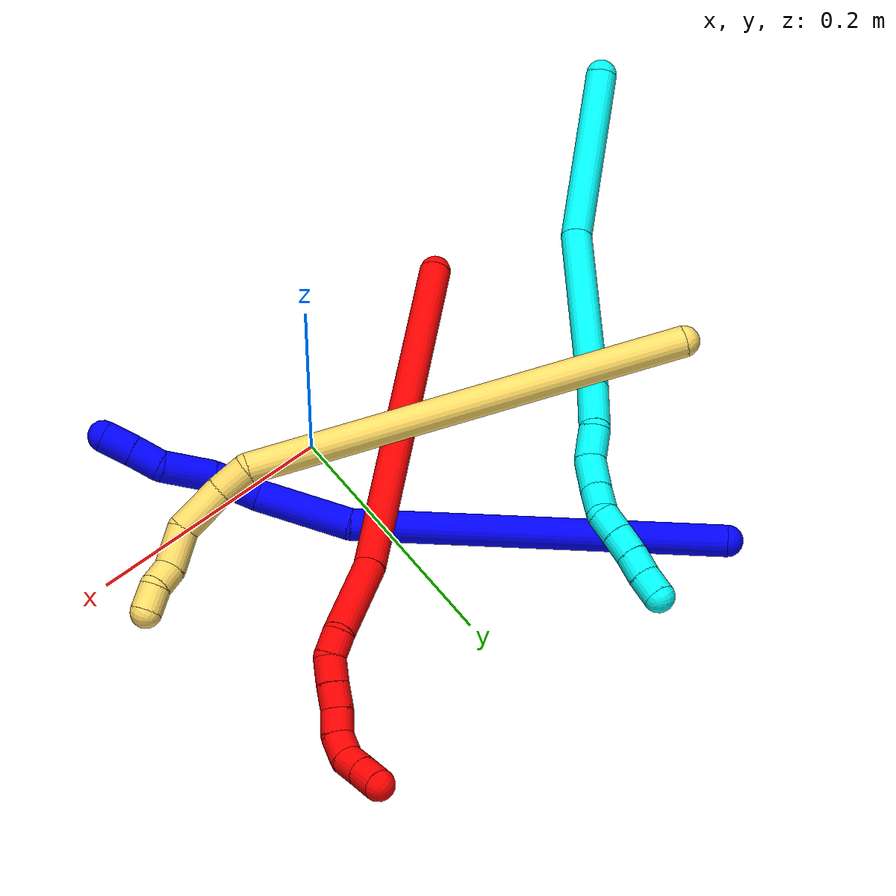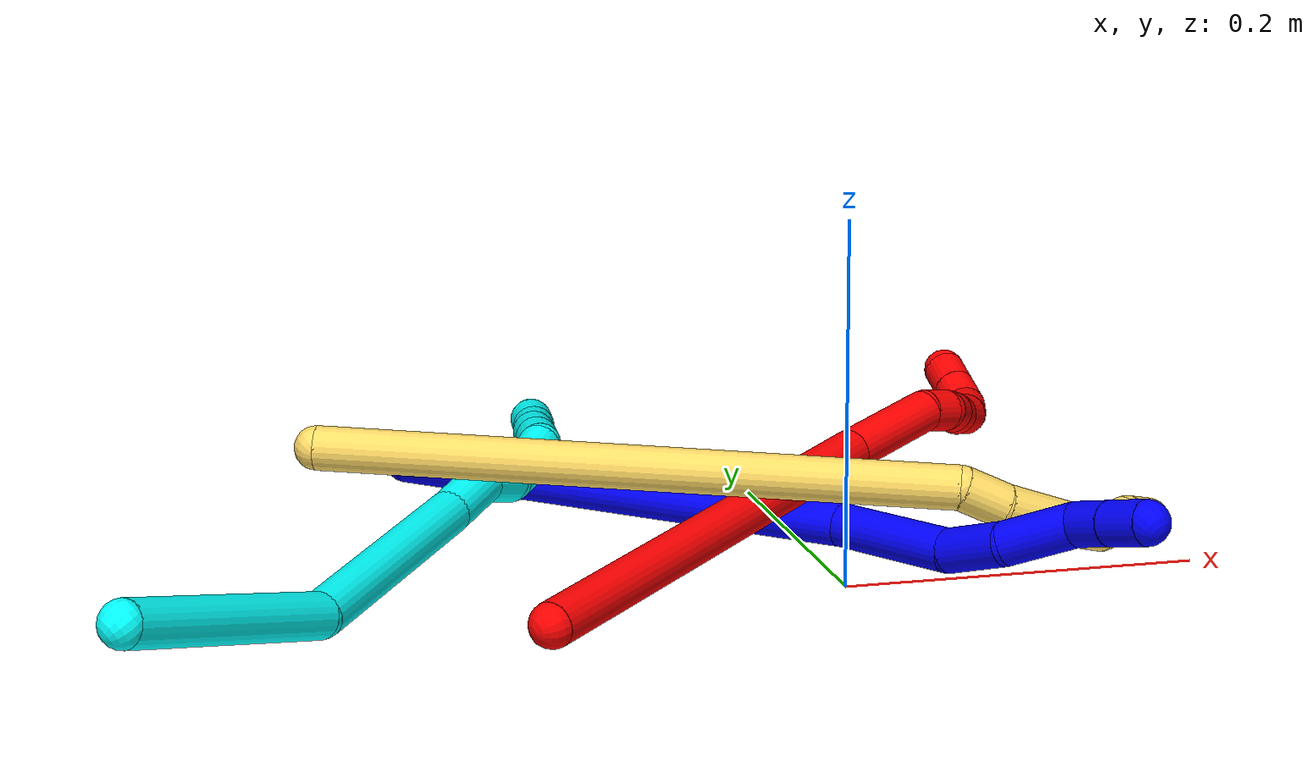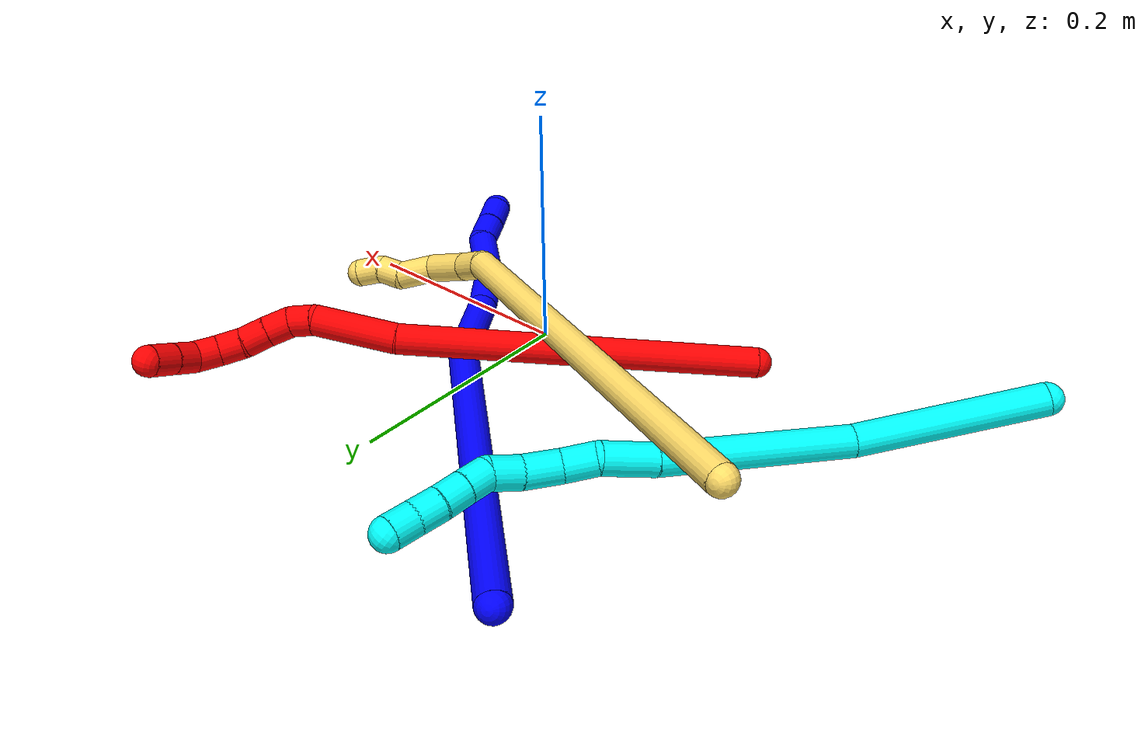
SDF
<sdf version="1.7">
 <world name="default">
  <model name="1">
   <static>0</static>
   <link name="1">
    <collision name="collision-cylinder-e_1_1_4">
     <pose>0.058145 -0.059407 -0.119839 2.68138 0.410069 1.45199</pose>
     <geometry><cylinder><radius>0.0125</radius><length>0.291695</length></cylinder></geometry>
     <surface>
      <friction><ode><mu>1.16</mu><mu2>1.16</mu2><slip1>0</slip1><slip2>0</slip2></ode></friction>
      <contact><ode><kp>1e+06</kp><kd>1</kd><max_vel>0</max_vel><min_depth>0.001</min_depth></ode></contact>
     </surface>
    </collision>
    <visual name="visual-cylinder-e_1_1_4">
     <pose>0.058145 -0.059407 -0.119839 2.68138 0.410069 1.45199</pose>
     <geometry><cylinder><radius>0.0125</radius><length>0.291695</length></cylinder></geometry>
     <material><ambient>0 0 1 1</ambient></material>
    </visual>
    <collision name="collision-cylinder-e_2_4_5">
     <pose>0.120999 -0.136488 -0.273508 2.66012 0.122727 0.490467</pose>
     <geometry><cylinder><radius>0.0125</radius><length>0.076916</length></cylinder></geometry>
     <surface>
      <friction><ode><mu>1.16</mu><mu2>1.16</mu2><slip1>0</slip1><slip2>0</slip2></ode></friction>
      <contact><ode><kp>1e+06</kp><kd>1</kd><max_vel>0</max_vel><min_depth>0.001</min_depth></ode></contact>
     </surface>
    </collision>
    <visual name="visual-cylinder-e_2_4_5">
     <pose>0.120999 -0.136488 -0.273508 2.66012 0.122727 0.490467</pose>
     <geometry><cylinder><radius>0.0125</radius><length>0.076916</length></cylinder></geometry>
     <material><ambient>0 0 1 1</ambient></material>
    </visual>
    <collision name="collision-cylinder-e_3_5_6">
     <pose>0.128902 -0.167511 -0.321048 2.36965 0.165443 0.402545</pose>
     <geometry><cylinder><radius>0.0125</radius><length>0.0388</length></cylinder></geometry>
     <surface>
      <friction><ode><mu>1.16</mu><mu2>1.16</mu2><slip1>0</slip1><slip2>0</slip2></ode></friction>
      <contact><ode><kp>1e+06</kp><kd>1</kd><max_vel>0</max_vel><min_depth>0.001</min_depth></ode></contact>
     </surface>
    </collision>
    <visual name="visual-cylinder-e_3_5_6">
     <pose>0.128902 -0.167511 -0.321048 2.36965 0.165443 0.402545</pose>
     <geometry><cylinder><radius>0.0125</radius><length>0.0388</length></cylinder></geometry>
     <material><ambient>0 0 1 1</ambient></material>
    </visual>
    <collision name="collision-cylinder-e_4_6_7">
     <pose>0.141171 -0.195801 -0.347118 2.26179 0.437687 0.882881</pose>
     <geometry><cylinder><radius>0.0125</radius><length>0.04282</length></cylinder></geometry>
     <surface>
      <friction><ode><mu>1.16</mu><mu2>1.16</mu2><slip1>0</slip1><slip2>0</slip2></ode></friction>
      <contact><ode><kp>1e+06</kp><kd>1</kd><max_vel>0</max_vel><min_depth>0.001</min_depth></ode></contact>
     </surface>
    </collision>
    <visual name="visual-cylinder-e_4_6_7">
     <pose>0.141171 -0.195801 -0.347118 2.26179 0.437687 0.882881</pose>
     <geometry><cylinder><radius>0.0125</radius><length>0.04282</length></cylinder></geometry>
     <material><ambient>0 0 1 1</ambient></material>
    </visual>
    <collision name="collision-cylinder-e_5_7_8">
     <pose>0.150469 -0.218682 -0.368611 2.42621 0.01848 0.049435</pose>
     <geometry><cylinder><radius>0.0125</radius><length>0.024206</length></cylinder></geometry>
     <surface>
      <friction><ode><mu>1.16</mu><mu2>1.16</mu2><slip1>0</slip1><slip2>0</slip2></ode></friction>
      <contact><ode><kp>1e+06</kp><kd>1</kd><max_vel>0</max_vel><min_depth>0.001</min_depth></ode></contact>
     </surface>
    </collision>
    <visual name="visual-cylinder-e_5_7_8">
     <pose>0.150469 -0.218682 -0.368611 2.42621 0.01848 0.049435</pose>
     <geometry><cylinder><radius>0.0125</radius><length>0.024206</length></cylinder></geometry>
     <material><ambient>0 0 1 1</ambient></material>
    </visual>
    <collision name="collision-cylinder-e_6_8_2">
     <pose>0.151426 -0.234846 -0.3875 2.44093 0.057363 0.156707</pose>
     <geometry><cylinder><radius>0.0125</radius><length>0.025565</length></cylinder></geometry>
     <surface>
      <friction><ode><mu>1.16</mu><mu2>1.16</mu2><slip1>0</slip1><slip2>0</slip2></ode></friction>
      <contact><ode><kp>1e+06</kp><kd>1</kd><max_vel>0</max_vel><min_depth>0.001</min_depth></ode></contact>
     </surface>
    </collision>
    <visual name="visual-cylinder-e_6_8_2">
     <pose>0.151426 -0.234846 -0.3875 2.44093 0.057363 0.156707</pose>
     <geometry><cylinder><radius>0.0125</radius><length>0.025565</length></cylinder></geometry>
     <material><ambient>0 0 1 1</ambient></material>
    </visual>
    <collision name="collision-sphere-2">
     <pose>0.152158 -0.243074 -0.397255 0 -0 0</pose>
     <geometry><sphere><radius>0.0125</radius></sphere></geometry>
     <surface>
      <friction><ode><mu>1.16</mu><mu2>1.16</mu2><slip1>0</slip1><slip2>0</slip2></ode></friction>
      <contact><ode><kp>1e+06</kp><kd>1</kd><max_vel>0</max_vel><min_depth>0.001</min_depth></ode></contact>
     </surface>
    </collision>
    <visual name="visual-sphere-2">
     <pose>0.152158 -0.243074 -0.397255 0 -0 0</pose>
     <geometry><sphere><radius>0.0125</radius></sphere></geometry>
     <material><ambient>0 0 1 1</ambient></material>
    </visual>
    <collision name="collision-sphere-4">
     <pose>0.116291 -0.118813 -0.239678 0 -0 0</pose>
     <geometry><sphere><radius>0.0125</radius></sphere></geometry>
     <surface>
      <friction><ode><mu>1.16</mu><mu2>1.16</mu2><slip1>0</slip1><slip2>0</slip2></ode></friction>
      <contact><ode><kp>1e+06</kp><kd>1</kd><max_vel>0</max_vel><min_depth>0.001</min_depth></ode></contact>
     </surface>
    </collision>
    <visual name="visual-sphere-4">
     <pose>0.116291 -0.118813 -0.239678 0 -0 0</pose>
     <geometry><sphere><radius>0.0125</radius></sphere></geometry>
     <material><ambient>0 0 1 1</ambient></material>
    </visual>
    <collision name="collision-sphere-1">
     <geometry><sphere><radius>0.0125</radius></sphere></geometry>
     <surface>
      <friction><ode><mu>1.16</mu><mu2>1.16</mu2><slip1>0</slip1><slip2>0</slip2></ode></friction>
      <contact><ode><kp>1e+06</kp><kd>1</kd><max_vel>0</max_vel><min_depth>0.001</min_depth></ode></contact>
     </surface>
    </collision>
    <visual name="visual-sphere-1">
     <geometry><sphere><radius>0.0125</radius></sphere></geometry>
     <material><ambient>0 0 1 1</ambient></material>
    </visual>
    <collision name="collision-sphere-8">
     <pose>0.150693 -0.226619 -0.377745 0 -0 0</pose>
     <geometry><sphere><radius>0.0125</radius></sphere></geometry>
     <surface>
      <friction><ode><mu>1.16</mu><mu2>1.16</mu2><slip1>0</slip1><slip2>0</slip2></ode></friction>
      <contact><ode><kp>1e+06</kp><kd>1</kd><max_vel>0</max_vel><min_depth>0.001</min_depth></ode></contact>
     </surface>
    </collision>
    <visual name="visual-sphere-8">
     <pose>0.150693 -0.226619 -0.377745 0 -0 0</pose>
     <geometry><sphere><radius>0.0125</radius></sphere></geometry>
     <material><ambient>0 0 1 1</ambient></material>
    </visual>
    <collision name="collision-sphere-5">
     <pose>0.125707 -0.154164 -0.307337 0 -0 0</pose>
     <geometry><sphere><radius>0.0125</radius></sphere></geometry>
     <surface>
      <friction><ode><mu>1.16</mu><mu2>1.16</mu2><slip1>0</slip1><slip2>0</slip2></ode></friction>
      <contact><ode><kp>1e+06</kp><kd>1</kd><max_vel>0</max_vel><min_depth>0.001</min_depth></ode></contact>
     </surface>
    </collision>
    <visual name="visual-sphere-5">
     <pose>0.125707 -0.154164 -0.307337 0 -0 0</pose>
     <geometry><sphere><radius>0.0125</radius></sphere></geometry>
     <material><ambient>0 0 1 1</ambient></material>
    </visual>
    <collision name="collision-sphere-6">
     <pose>0.132096 -0.180858 -0.33476 0 -0 0</pose>
     <geometry><sphere><radius>0.0125</radius></sphere></geometry>
     <surface>
      <friction><ode><mu>1.16</mu><mu2>1.16</mu2><slip1>0</slip1><slip2>0</slip2></ode></friction>
      <contact><ode><kp>1e+06</kp><kd>1</kd><max_vel>0</max_vel><min_depth>0.001</min_depth></ode></contact>
     </surface>
    </collision>
    <visual name="visual-sphere-6">
     <pose>0.132096 -0.180858 -0.33476 0 -0 0</pose>
     <geometry><sphere><radius>0.0125</radius></sphere></geometry>
     <material><ambient>0 0 1 1</ambient></material>
    </visual>
    <collision name="collision-sphere-7">
     <pose>0.150245 -0.210745 -0.359476 0 -0 0</pose>
     <geometry><sphere><radius>0.0125</radius></sphere></geometry>
     <surface>
      <friction><ode><mu>1.16</mu><mu2>1.16</mu2><slip1>0</slip1><slip2>0</slip2></ode></friction>
      <contact><ode><kp>1e+06</kp><kd>1</kd><max_vel>0</max_vel><min_depth>0.001</min_depth></ode></contact>
     </surface>
    </collision>
    <visual name="visual-sphere-7">
     <pose>0.150245 -0.210745 -0.359476 0 -0 0</pose>
     <geometry><sphere><radius>0.0125</radius></sphere></geometry>
     <material><ambient>0 0 1 1</ambient></material>
    </visual>
    <inertial>
     <pose>0.089654 -0.108015 -0.204285 0 -0 0</pose>
     <mass>0.5</mass>
     <inertia><ixx>0.00221</ixx><ixy>0</ixy><ixz>0</ixz><iyy>0.002008</iyy><iyz>0</iyz><izz>9e-06</izz></inertia>
    </inertial>
   </link>
   <pose>-0.197087 0.271285 0.014515 -1.08537 -0.031761 0.439058</pose>
  </model>
  <model name="2">
   <static>0</static>
   <link name="2">
    <collision name="collision-cylinder-e_1_1_4">
     <pose>0.023955 0.047916 0.135884 -0.339013 0.164749 -0.028259</pose>
     <geometry><cylinder><radius>0.0125</radius><length>0.292125</length></cylinder></geometry>
     <surface>
      <friction><ode><mu>1.16</mu><mu2>1.16</mu2><slip1>0</slip1><slip2>0</slip2></ode></friction>
      <contact><ode><kp>1e+06</kp><kd>1</kd><max_vel>0</max_vel><min_depth>0.001</min_depth></ode></contact>
     </surface>
    </collision>
    <visual name="visual-cylinder-e_1_1_4">
     <pose>0.023955 0.047916 0.135884 -0.339013 0.164749 -0.028259</pose>
     <geometry><cylinder><radius>0.0125</radius><length>0.292125</length></cylinder></geometry>
     <material><ambient>1 0 0 1</ambient></material>
    </visual>
    <collision name="collision-cylinder-e_2_4_5">
     <pose>0.049899 0.101938 0.30472 -0.183202 0.059283 -0.005447</pose>
     <geometry><cylinder><radius>0.0125</radius><length>0.067144</length></cylinder></geometry>
     <surface>
      <friction><ode><mu>1.16</mu><mu2>1.16</mu2><slip1>0</slip1><slip2>0</slip2></ode></friction>
      <contact><ode><kp>1e+06</kp><kd>1</kd><max_vel>0</max_vel><min_depth>0.001</min_depth></ode></contact>
     </surface>
    </collision>
    <visual name="visual-cylinder-e_2_4_5">
     <pose>0.049899 0.101938 0.30472 -0.183202 0.059283 -0.005447</pose>
     <geometry><cylinder><radius>0.0125</radius><length>0.067144</length></cylinder></geometry>
     <material><ambient>1 0 0 1</ambient></material>
    </visual>
    <collision name="collision-cylinder-e_3_5_6">
     <pose>0.055781 0.10919 0.346941 -0.123116 0.394961 -0.024664</pose>
     <geometry><cylinder><radius>0.0125</radius><length>0.020237</length></cylinder></geometry>
     <surface>
      <friction><ode><mu>1.16</mu><mu2>1.16</mu2><slip1>0</slip1><slip2>0</slip2></ode></friction>
      <contact><ode><kp>1e+06</kp><kd>1</kd><max_vel>0</max_vel><min_depth>0.001</min_depth></ode></contact>
     </surface>
    </collision>
    <visual name="visual-cylinder-e_3_5_6">
     <pose>0.055781 0.10919 0.346941 -0.123116 0.394961 -0.024664</pose>
     <geometry><cylinder><radius>0.0125</radius><length>0.020237</length></cylinder></geometry>
     <material><ambient>1 0 0 1</ambient></material>
    </visual>
    <collision name="collision-cylinder-e_4_6_7">
     <pose>0.065117 0.115362 0.363224 -0.621594 0.562742 -0.185152</pose>
     <geometry><cylinder><radius>0.0125</radius><length>0.020403</length></cylinder></geometry>
     <surface>
      <friction><ode><mu>1.16</mu><mu2>1.16</mu2><slip1>0</slip1><slip2>0</slip2></ode></friction>
      <contact><ode><kp>1e+06</kp><kd>1</kd><max_vel>0</max_vel><min_depth>0.001</min_depth></ode></contact>
     </surface>
    </collision>
    <visual name="visual-cylinder-e_4_6_7">
     <pose>0.065117 0.115362 0.363224 -0.621594 0.562742 -0.185152</pose>
     <geometry><cylinder><radius>0.0125</radius><length>0.020403</length></cylinder></geometry>
     <material><ambient>1 0 0 1</ambient></material>
    </visual>
    <collision name="collision-cylinder-e_5_7_8">
     <pose>0.076149 0.125668 0.376649 -0.6891 0.592285 -0.218121</pose>
     <geometry><cylinder><radius>0.0125</radius><length>0.020022</length></cylinder></geometry>
     <surface>
      <friction><ode><mu>1.16</mu><mu2>1.16</mu2><slip1>0</slip1><slip2>0</slip2></ode></friction>
      <contact><ode><kp>1e+06</kp><kd>1</kd><max_vel>0</max_vel><min_depth>0.001</min_depth></ode></contact>
     </surface>
    </collision>
    <visual name="visual-cylinder-e_5_7_8">
     <pose>0.076149 0.125668 0.376649 -0.6891 0.592285 -0.218121</pose>
     <geometry><cylinder><radius>0.0125</radius><length>0.020022</length></cylinder></geometry>
     <material><ambient>1 0 0 1</ambient></material>
    </visual>
    <collision name="collision-cylinder-e_6_8_9">
     <pose>0.08655 0.135255 0.390735 -0.511329 0.500388 -0.133395</pose>
     <geometry><cylinder><radius>0.0125</radius><length>0.02006</length></cylinder></geometry>
     <surface>
      <friction><ode><mu>1.16</mu><mu2>1.16</mu2><slip1>0</slip1><slip2>0</slip2></ode></friction>
      <contact><ode><kp>1e+06</kp><kd>1</kd><max_vel>0</max_vel><min_depth>0.001</min_depth></ode></contact>
     </surface>
    </collision>
    <visual name="visual-cylinder-e_6_8_9">
     <pose>0.08655 0.135255 0.390735 -0.511329 0.500388 -0.133395</pose>
     <geometry><cylinder><radius>0.0125</radius><length>0.02006</length></cylinder></geometry>
     <material><ambient>1 0 0 1</ambient></material>
    </visual>
    <collision name="collision-cylinder-e_7_9_10">
     <pose>0.093968 0.147015 0.404547 -0.881895 0.263621 -0.124975</pose>
     <geometry><cylinder><radius>0.0125</radius><length>0.020001</length></cylinder></geometry>
     <surface>
      <friction><ode><mu>1.16</mu><mu2>1.16</mu2><slip1>0</slip1><slip2>0</slip2></ode></friction>
      <contact><ode><kp>1e+06</kp><kd>1</kd><max_vel>0</max_vel><min_depth>0.001</min_depth></ode></contact>
     </surface>
    </collision>
    <visual name="visual-cylinder-e_7_9_10">
     <pose>0.093968 0.147015 0.404547 -0.881895 0.263621 -0.124975</pose>
     <geometry><cylinder><radius>0.0125</radius><length>0.020001</length></cylinder></geometry>
     <material><ambient>1 0 0 1</ambient></material>
    </visual>
    <collision name="collision-cylinder-e_8_10_11">
     <pose>0.095185 0.163699 0.414278 -1.19955 -0.139257 0.095307</pose>
     <geometry><cylinder><radius>0.0125</radius><length>0.020006</length></cylinder></geometry>
     <surface>
      <friction><ode><mu>1.16</mu><mu2>1.16</mu2><slip1>0</slip1><slip2>0</slip2></ode></friction>
      <contact><ode><kp>1e+06</kp><kd>1</kd><max_vel>0</max_vel><min_depth>0.001</min_depth></ode></contact>
     </surface>
    </collision>
    <visual name="visual-cylinder-e_8_10_11">
     <pose>0.095185 0.163699 0.414278 -1.19955 -0.139257 0.095307</pose>
     <geometry><cylinder><radius>0.0125</radius><length>0.020006</length></cylinder></geometry>
     <material><ambient>1 0 0 1</ambient></material>
    </visual>
    <collision name="collision-cylinder-e_9_11_2">
     <pose>0.09255 0.182136 0.421575 -1.18835 -0.125003 0.084514</pose>
     <geometry><cylinder><radius>0.0125</radius><length>0.020002</length></cylinder></geometry>
     <surface>
      <friction><ode><mu>1.16</mu><mu2>1.16</mu2><slip1>0</slip1><slip2>0</slip2></ode></friction>
      <contact><ode><kp>1e+06</kp><kd>1</kd><max_vel>0</max_vel><min_depth>0.001</min_depth></ode></contact>
     </surface>
    </collision>
    <visual name="visual-cylinder-e_9_11_2">
     <pose>0.09255 0.182136 0.421575 -1.18835 -0.125003 0.084514</pose>
     <geometry><cylinder><radius>0.0125</radius><length>0.020002</length></cylinder></geometry>
     <material><ambient>1 0 0 1</ambient></material>
    </visual>
    <collision name="collision-sphere-2">
     <pose>0.091303 0.191342 0.425278 0 -0 0</pose>
     <geometry><sphere><radius>0.0125</radius></sphere></geometry>
     <surface>
      <friction><ode><mu>1.16</mu><mu2>1.16</mu2><slip1>0</slip1><slip2>0</slip2></ode></friction>
      <contact><ode><kp>1e+06</kp><kd>1</kd><max_vel>0</max_vel><min_depth>0.001</min_depth></ode></contact>
     </surface>
    </collision>
    <visual name="visual-sphere-2">
     <pose>0.091303 0.191342 0.425278 0 -0 0</pose>
     <geometry><sphere><radius>0.0125</radius></sphere></geometry>
     <material><ambient>1 0 0 1</ambient></material>
    </visual>
    <collision name="collision-sphere-11">
     <pose>0.093797 0.17293 0.417872 0 -0 0</pose>
     <geometry><sphere><radius>0.0125</radius></sphere></geometry>
     <surface>
      <friction><ode><mu>1.16</mu><mu2>1.16</mu2><slip1>0</slip1><slip2>0</slip2></ode></friction>
      <contact><ode><kp>1e+06</kp><kd>1</kd><max_vel>0</max_vel><min_depth>0.001</min_depth></ode></contact>
     </surface>
    </collision>
    <visual name="visual-sphere-11">
     <pose>0.093797 0.17293 0.417872 0 -0 0</pose>
     <geometry><sphere><radius>0.0125</radius></sphere></geometry>
     <material><ambient>1 0 0 1</ambient></material>
    </visual>
    <collision name="collision-sphere-10">
     <pose>0.096574 0.154468 0.410685 0 -0 0</pose>
     <geometry><sphere><radius>0.0125</radius></sphere></geometry>
     <surface>
      <friction><ode><mu>1.16</mu><mu2>1.16</mu2><slip1>0</slip1><slip2>0</slip2></ode></friction>
      <contact><ode><kp>1e+06</kp><kd>1</kd><max_vel>0</max_vel><min_depth>0.001</min_depth></ode></contact>
     </surface>
    </collision>
    <visual name="visual-sphere-10">
     <pose>0.096574 0.154468 0.410685 0 -0 0</pose>
     <geometry><sphere><radius>0.0125</radius></sphere></geometry>
     <material><ambient>1 0 0 1</ambient></material>
    </visual>
    <collision name="collision-sphere-9">
     <pose>0.091362 0.139562 0.39841 0 -0 0</pose>
     <geometry><sphere><radius>0.0125</radius></sphere></geometry>
     <surface>
      <friction><ode><mu>1.16</mu><mu2>1.16</mu2><slip1>0</slip1><slip2>0</slip2></ode></friction>
      <contact><ode><kp>1e+06</kp><kd>1</kd><max_vel>0</max_vel><min_depth>0.001</min_depth></ode></contact>
     </surface>
    </collision>
    <visual name="visual-sphere-9">
     <pose>0.091362 0.139562 0.39841 0 -0 0</pose>
     <geometry><sphere><radius>0.0125</radius></sphere></geometry>
     <material><ambient>1 0 0 1</ambient></material>
    </visual>
    <collision name="collision-sphere-4">
     <pose>0.04791 0.095833 0.271768 0 -0 0</pose>
     <geometry><sphere><radius>0.0125</radius></sphere></geometry>
     <surface>
      <friction><ode><mu>1.16</mu><mu2>1.16</mu2><slip1>0</slip1><slip2>0</slip2></ode></friction>
      <contact><ode><kp>1e+06</kp><kd>1</kd><max_vel>0</max_vel><min_depth>0.001</min_depth></ode></contact>
     </surface>
    </collision>
    <visual name="visual-sphere-4">
     <pose>0.04791 0.095833 0.271768 0 -0 0</pose>
     <geometry><sphere><radius>0.0125</radius></sphere></geometry>
     <material><ambient>1 0 0 1</ambient></material>
    </visual>
    <collision name="collision-sphere-1">
     <geometry><sphere><radius>0.0125</radius></sphere></geometry>
     <surface>
      <friction><ode><mu>1.16</mu><mu2>1.16</mu2><slip1>0</slip1><slip2>0</slip2></ode></friction>
      <contact><ode><kp>1e+06</kp><kd>1</kd><max_vel>0</max_vel><min_depth>0.001</min_depth></ode></contact>
     </surface>
    </collision>
    <visual name="visual-sphere-1">
     <geometry><sphere><radius>0.0125</radius></sphere></geometry>
     <material><ambient>1 0 0 1</ambient></material>
    </visual>
    <collision name="collision-sphere-8">
     <pose>0.081737 0.130949 0.38306 0 -0 0</pose>
     <geometry><sphere><radius>0.0125</radius></sphere></geometry>
     <surface>
      <friction><ode><mu>1.16</mu><mu2>1.16</mu2><slip1>0</slip1><slip2>0</slip2></ode></friction>
      <contact><ode><kp>1e+06</kp><kd>1</kd><max_vel>0</max_vel><min_depth>0.001</min_depth></ode></contact>
     </surface>
    </collision>
    <visual name="visual-sphere-8">
     <pose>0.081737 0.130949 0.38306 0 -0 0</pose>
     <geometry><sphere><radius>0.0125</radius></sphere></geometry>
     <material><ambient>1 0 0 1</ambient></material>
    </visual>
    <collision name="collision-sphere-5">
     <pose>0.051888 0.108043 0.337672 0 -0 0</pose>
     <geometry><sphere><radius>0.0125</radius></sphere></geometry>
     <surface>
      <friction><ode><mu>1.16</mu><mu2>1.16</mu2><slip1>0</slip1><slip2>0</slip2></ode></friction>
      <contact><ode><kp>1e+06</kp><kd>1</kd><max_vel>0</max_vel><min_depth>0.001</min_depth></ode></contact>
     </surface>
    </collision>
    <visual name="visual-sphere-5">
     <pose>0.051888 0.108043 0.337672 0 -0 0</pose>
     <geometry><sphere><radius>0.0125</radius></sphere></geometry>
     <material><ambient>1 0 0 1</ambient></material>
    </visual>
    <collision name="collision-sphere-6">
     <pose>0.059675 0.110337 0.35621 0 -0 0</pose>
     <geometry><sphere><radius>0.0125</radius></sphere></geometry>
     <surface>
      <friction><ode><mu>1.16</mu><mu2>1.16</mu2><slip1>0</slip1><slip2>0</slip2></ode></friction>
      <contact><ode><kp>1e+06</kp><kd>1</kd><max_vel>0</max_vel><min_depth>0.001</min_depth></ode></contact>
     </surface>
    </collision>
    <visual name="visual-sphere-6">
     <pose>0.059675 0.110337 0.35621 0 -0 0</pose>
     <geometry><sphere><radius>0.0125</radius></sphere></geometry>
     <material><ambient>1 0 0 1</ambient></material>
    </visual>
    <collision name="collision-sphere-7">
     <pose>0.07056 0.120386 0.370239 0 -0 0</pose>
     <geometry><sphere><radius>0.0125</radius></sphere></geometry>
     <surface>
      <friction><ode><mu>1.16</mu><mu2>1.16</mu2><slip1>0</slip1><slip2>0</slip2></ode></friction>
      <contact><ode><kp>1e+06</kp><kd>1</kd><max_vel>0</max_vel><min_depth>0.001</min_depth></ode></contact>
     </surface>
    </collision>
    <visual name="visual-sphere-7">
     <pose>0.07056 0.120386 0.370239 0 -0 0</pose>
     <geometry><sphere><radius>0.0125</radius></sphere></geometry>
     <material><ambient>1 0 0 1</ambient></material>
    </visual>
    <inertial>
     <pose>0.043403 0.080987 0.229557 0 -0 0</pose>
     <mass>0.5</mass>
     <inertia>
      <ixx>0.002045</ixx>
      <ixy>0</ixy>
      <ixz>0</ixz>
      <iyy>0.001963</iyy>
      <iyz>0</iyz>
      <izz>-0.00101</izz>
     </inertia>
    </inertial>
   </link>
   <pose>-0.173909 -0.063453 0.011496 0.78545 1.27582 1.16998</pose>
  </model>
  <model name="3">
   <static>0</static>
   <link name="3">
    <collision name="collision-cylinder-e_1_1_4">
     <pose>0.016011 0.053518 -0.044708 -2.26674 0.225691 -0.475509</pose>
     <geometry><cylinder><radius>0.0125</radius><length>0.143099</length></cylinder></geometry>
     <surface>
      <friction><ode><mu>1.16</mu><mu2>1.16</mu2><slip1>0</slip1><slip2>0</slip2></ode></friction>
      <contact><ode><kp>1e+06</kp><kd>1</kd><max_vel>0</max_vel><min_depth>0.001</min_depth></ode></contact>
     </surface>
    </collision>
    <visual name="visual-cylinder-e_1_1_4">
     <pose>0.016011 0.053518 -0.044708 -2.26674 0.225691 -0.475509</pose>
     <geometry><cylinder><radius>0.0125</radius><length>0.143099</length></cylinder></geometry>
     <material><ambient>0.003922 1 0.996078 1</ambient></material>
    </visual>
    <collision name="collision-cylinder-e_2_4_5">
     <pose>0.070603 0.144573 -0.144442 -2.54294 0.524975 -1.43275</pose>
     <geometry><cylinder><radius>0.0125</radius><length>0.153953</length></cylinder></geometry>
     <surface>
      <friction><ode><mu>1.16</mu><mu2>1.16</mu2><slip1>0</slip1><slip2>0</slip2></ode></friction>
      <contact><ode><kp>1e+06</kp><kd>1</kd><max_vel>0</max_vel><min_depth>0.001</min_depth></ode></contact>
     </surface>
    </collision>
    <visual name="visual-cylinder-e_2_4_5">
     <pose>0.070603 0.144573 -0.144442 -2.54294 0.524975 -1.43275</pose>
     <geometry><cylinder><radius>0.0125</radius><length>0.153953</length></cylinder></geometry>
     <material><ambient>0.003922 1 0.996078 1</ambient></material>
    </visual>
    <collision name="collision-cylinder-e_3_5_6">
     <pose>0.118985 0.190464 -0.21586 -2.67028 0.489572 -1.61029</pose>
     <geometry><cylinder><radius>0.0125</radius><length>0.041691</length></cylinder></geometry>
     <surface>
      <friction><ode><mu>1.16</mu><mu2>1.16</mu2><slip1>0</slip1><slip2>0</slip2></ode></friction>
      <contact><ode><kp>1e+06</kp><kd>1</kd><max_vel>0</max_vel><min_depth>0.001</min_depth></ode></contact>
     </surface>
    </collision>
    <visual name="visual-cylinder-e_3_5_6">
     <pose>0.118985 0.190464 -0.21586 -2.67028 0.489572 -1.61029</pose>
     <geometry><cylinder><radius>0.0125</radius><length>0.041691</length></cylinder></geometry>
     <material><ambient>0.003922 1 0.996078 1</ambient></material>
    </visual>
    <collision name="collision-cylinder-e_4_6_7">
     <pose>0.131884 0.208572 -0.240618 -2.27976 0.236391 -0.505555</pose>
     <geometry><cylinder><radius>0.0125</radius><length>0.026438</length></cylinder></geometry>
     <surface>
      <friction><ode><mu>1.16</mu><mu2>1.16</mu2><slip1>0</slip1><slip2>0</slip2></ode></friction>
      <contact><ode><kp>1e+06</kp><kd>1</kd><max_vel>0</max_vel><min_depth>0.001</min_depth></ode></contact>
     </surface>
    </collision>
    <visual name="visual-cylinder-e_4_6_7">
     <pose>0.131884 0.208572 -0.240618 -2.27976 0.236391 -0.505555</pose>
     <geometry><cylinder><radius>0.0125</radius><length>0.026438</length></cylinder></geometry>
     <material><ambient>0.003922 1 0.996078 1</ambient></material>
    </visual>
    <collision name="collision-cylinder-e_5_7_8">
     <pose>0.143491 0.225645 -0.25895 -2.5081 0.602899 -1.51803</pose>
     <geometry><cylinder><radius>0.0125</radius><length>0.030021</length></cylinder></geometry>
     <surface>
      <friction><ode><mu>1.16</mu><mu2>1.16</mu2><slip1>0</slip1><slip2>0</slip2></ode></friction>
      <contact><ode><kp>1e+06</kp><kd>1</kd><max_vel>0</max_vel><min_depth>0.001</min_depth></ode></contact>
     </surface>
    </collision>
    <visual name="visual-cylinder-e_5_7_8">
     <pose>0.143491 0.225645 -0.25895 -2.5081 0.602899 -1.51803</pose>
     <geometry><cylinder><radius>0.0125</radius><length>0.030021</length></cylinder></geometry>
     <material><ambient>0.003922 1 0.996078 1</ambient></material>
    </visual>
    <collision name="collision-cylinder-e_6_8_9">
     <pose>0.159396 0.236903 -0.277741 -2.72181 0.653045 -2.01855</pose>
     <geometry><cylinder><radius>0.0125</radius><length>0.024337</length></cylinder></geometry>
     <surface>
      <friction><ode><mu>1.16</mu><mu2>1.16</mu2><slip1>0</slip1><slip2>0</slip2></ode></friction>
      <contact><ode><kp>1e+06</kp><kd>1</kd><max_vel>0</max_vel><min_depth>0.001</min_depth></ode></contact>
     </surface>
    </collision>
    <visual name="visual-cylinder-e_6_8_9">
     <pose>0.159396 0.236903 -0.277741 -2.72181 0.653045 -2.01855</pose>
     <geometry><cylinder><radius>0.0125</radius><length>0.024337</length></cylinder></geometry>
     <material><ambient>0.003922 1 0.996078 1</ambient></material>
    </visual>
    <collision name="collision-cylinder-e_7_9_10">
     <pose>0.175062 0.245749 -0.289624 -2.12803 0.960812 -1.50761</pose>
     <geometry><cylinder><radius>0.0125</radius><length>0.020185</length></cylinder></geometry>
     <surface>
      <friction><ode><mu>1.16</mu><mu2>1.16</mu2><slip1>0</slip1><slip2>0</slip2></ode></friction>
      <contact><ode><kp>1e+06</kp><kd>1</kd><max_vel>0</max_vel><min_depth>0.001</min_depth></ode></contact>
     </surface>
    </collision>
    <visual name="visual-cylinder-e_7_9_10">
     <pose>0.175062 0.245749 -0.289624 -2.12803 0.960812 -1.50761</pose>
     <geometry><cylinder><radius>0.0125</radius><length>0.020185</length></cylinder></geometry>
     <material><ambient>0.003922 1 0.996078 1</ambient></material>
    </visual>
    <collision name="collision-cylinder-e_8_10_11">
     <pose>0.191478 0.255765 -0.295645 -2.09637 0.943348 -1.44948</pose>
     <geometry><cylinder><radius>0.0125</radius><length>0.020119</length></cylinder></geometry>
     <surface>
      <friction><ode><mu>1.16</mu><mu2>1.16</mu2><slip1>0</slip1><slip2>0</slip2></ode></friction>
      <contact><ode><kp>1e+06</kp><kd>1</kd><max_vel>0</max_vel><min_depth>0.001</min_depth></ode></contact>
     </surface>
    </collision>
    <visual name="visual-cylinder-e_8_10_11">
     <pose>0.191478 0.255765 -0.295645 -2.09637 0.943348 -1.44948</pose>
     <geometry><cylinder><radius>0.0125</radius><length>0.020119</length></cylinder></geometry>
     <material><ambient>0.003922 1 0.996078 1</ambient></material>
    </visual>
    <collision name="collision-cylinder-e_9_11_12">
     <pose>0.207235 0.266366 -0.302123 -2.14019 0.862488 -1.39832</pose>
     <geometry><cylinder><radius>0.0125</radius><length>0.020048</length></cylinder></geometry>
     <surface>
      <friction><ode><mu>1.16</mu><mu2>1.16</mu2><slip1>0</slip1><slip2>0</slip2></ode></friction>
      <contact><ode><kp>1e+06</kp><kd>1</kd><max_vel>0</max_vel><min_depth>0.001</min_depth></ode></contact>
     </surface>
    </collision>
    <visual name="visual-cylinder-e_9_11_12">
     <pose>0.207235 0.266366 -0.302123 -2.14019 0.862488 -1.39832</pose>
     <geometry><cylinder><radius>0.0125</radius><length>0.020048</length></cylinder></geometry>
     <material><ambient>0.003922 1 0.996078 1</ambient></material>
    </visual>
    <collision name="collision-cylinder-e_10_12_2">
     <pose>0.223125 0.276506 -0.30895 -2.18967 0.967212 -1.58947</pose>
     <geometry><cylinder><radius>0.0125</radius><length>0.020108</length></cylinder></geometry>
     <surface>
      <friction><ode><mu>1.16</mu><mu2>1.16</mu2><slip1>0</slip1><slip2>0</slip2></ode></friction>
      <contact><ode><kp>1e+06</kp><kd>1</kd><max_vel>0</max_vel><min_depth>0.001</min_depth></ode></contact>
     </surface>
    </collision>
    <visual name="visual-cylinder-e_10_12_2">
     <pose>0.223125 0.276506 -0.30895 -2.18967 0.967212 -1.58947</pose>
     <geometry><cylinder><radius>0.0125</radius><length>0.020108</length></cylinder></geometry>
     <material><ambient>0.003922 1 0.996078 1</ambient></material>
    </visual>
    <collision name="collision-sphere-2">
     <pose>0.231403 0.281155 -0.31226 0 -0 0</pose>
     <geometry><sphere><radius>0.0125</radius></sphere></geometry>
     <surface>
      <friction><ode><mu>1.16</mu><mu2>1.16</mu2><slip1>0</slip1><slip2>0</slip2></ode></friction>
      <contact><ode><kp>1e+06</kp><kd>1</kd><max_vel>0</max_vel><min_depth>0.001</min_depth></ode></contact>
     </surface>
    </collision>
    <visual name="visual-sphere-2">
     <pose>0.231403 0.281155 -0.31226 0 -0 0</pose>
     <geometry><sphere><radius>0.0125</radius></sphere></geometry>
     <material><ambient>0.003922 1 0.996078 1</ambient></material>
    </visual>
    <collision name="collision-sphere-12">
     <pose>0.214848 0.271858 -0.305639 0 -0 0</pose>
     <geometry><sphere><radius>0.0125</radius></sphere></geometry>
     <surface>
      <friction><ode><mu>1.16</mu><mu2>1.16</mu2><slip1>0</slip1><slip2>0</slip2></ode></friction>
      <contact><ode><kp>1e+06</kp><kd>1</kd><max_vel>0</max_vel><min_depth>0.001</min_depth></ode></contact>
     </surface>
    </collision>
    <visual name="visual-sphere-12">
     <pose>0.214848 0.271858 -0.305639 0 -0 0</pose>
     <geometry><sphere><radius>0.0125</radius></sphere></geometry>
     <material><ambient>0.003922 1 0.996078 1</ambient></material>
    </visual>
    <collision name="collision-sphere-11">
     <pose>0.199622 0.260874 -0.298608 0 -0 0</pose>
     <geometry><sphere><radius>0.0125</radius></sphere></geometry>
     <surface>
      <friction><ode><mu>1.16</mu><mu2>1.16</mu2><slip1>0</slip1><slip2>0</slip2></ode></friction>
      <contact><ode><kp>1e+06</kp><kd>1</kd><max_vel>0</max_vel><min_depth>0.001</min_depth></ode></contact>
     </surface>
    </collision>
    <visual name="visual-sphere-11">
     <pose>0.199622 0.260874 -0.298608 0 -0 0</pose>
     <geometry><sphere><radius>0.0125</radius></sphere></geometry>
     <material><ambient>0.003922 1 0.996078 1</ambient></material>
    </visual>
    <collision name="collision-sphere-10">
     <pose>0.183334 0.250656 -0.292682 0 -0 0</pose>
     <geometry><sphere><radius>0.0125</radius></sphere></geometry>
     <surface>
      <friction><ode><mu>1.16</mu><mu2>1.16</mu2><slip1>0</slip1><slip2>0</slip2></ode></friction>
      <contact><ode><kp>1e+06</kp><kd>1</kd><max_vel>0</max_vel><min_depth>0.001</min_depth></ode></contact>
     </surface>
    </collision>
    <visual name="visual-sphere-10">
     <pose>0.183334 0.250656 -0.292682 0 -0 0</pose>
     <geometry><sphere><radius>0.0125</radius></sphere></geometry>
     <material><ambient>0.003922 1 0.996078 1</ambient></material>
    </visual>
    <collision name="collision-sphere-9">
     <pose>0.16679 0.240842 -0.286567 0 -0 0</pose>
     <geometry><sphere><radius>0.0125</radius></sphere></geometry>
     <surface>
      <friction><ode><mu>1.16</mu><mu2>1.16</mu2><slip1>0</slip1><slip2>0</slip2></ode></friction>
      <contact><ode><kp>1e+06</kp><kd>1</kd><max_vel>0</max_vel><min_depth>0.001</min_depth></ode></contact>
     </surface>
    </collision>
    <visual name="visual-sphere-9">
     <pose>0.16679 0.240842 -0.286567 0 -0 0</pose>
     <geometry><sphere><radius>0.0125</radius></sphere></geometry>
     <material><ambient>0.003922 1 0.996078 1</ambient></material>
    </visual>
    <collision name="collision-sphere-4">
     <pose>0.032023 0.107036 -0.089416 0 -0 0</pose>
     <geometry><sphere><radius>0.0125</radius></sphere></geometry>
     <surface>
      <friction><ode><mu>1.16</mu><mu2>1.16</mu2><slip1>0</slip1><slip2>0</slip2></ode></friction>
      <contact><ode><kp>1e+06</kp><kd>1</kd><max_vel>0</max_vel><min_depth>0.001</min_depth></ode></contact>
     </surface>
    </collision>
    <visual name="visual-sphere-4">
     <pose>0.032023 0.107036 -0.089416 0 -0 0</pose>
     <geometry><sphere><radius>0.0125</radius></sphere></geometry>
     <material><ambient>0.003922 1 0.996078 1</ambient></material>
    </visual>
    <collision name="collision-sphere-1">
     <geometry><sphere><radius>0.0125</radius></sphere></geometry>
     <surface>
      <friction><ode><mu>1.16</mu><mu2>1.16</mu2><slip1>0</slip1><slip2>0</slip2></ode></friction>
      <contact><ode><kp>1e+06</kp><kd>1</kd><max_vel>0</max_vel><min_depth>0.001</min_depth></ode></contact>
     </surface>
    </collision>
    <visual name="visual-sphere-1">
     <geometry><sphere><radius>0.0125</radius></sphere></geometry>
     <material><ambient>0.003922 1 0.996078 1</ambient></material>
    </visual>
    <collision name="collision-sphere-8">
     <pose>0.152002 0.232964 -0.268915 0 -0 0</pose>
     <geometry><sphere><radius>0.0125</radius></sphere></geometry>
     <surface>
      <friction><ode><mu>1.16</mu><mu2>1.16</mu2><slip1>0</slip1><slip2>0</slip2></ode></friction>
      <contact><ode><kp>1e+06</kp><kd>1</kd><max_vel>0</max_vel><min_depth>0.001</min_depth></ode></contact>
     </surface>
    </collision>
    <visual name="visual-sphere-8">
     <pose>0.152002 0.232964 -0.268915 0 -0 0</pose>
     <geometry><sphere><radius>0.0125</radius></sphere></geometry>
     <material><ambient>0.003922 1 0.996078 1</ambient></material>
    </visual>
    <collision name="collision-sphere-5">
     <pose>0.109183 0.18211 -0.199469 0 -0 0</pose>
     <geometry><sphere><radius>0.0125</radius></sphere></geometry>
     <surface>
      <friction><ode><mu>1.16</mu><mu2>1.16</mu2><slip1>0</slip1><slip2>0</slip2></ode></friction>
      <contact><ode><kp>1e+06</kp><kd>1</kd><max_vel>0</max_vel><min_depth>0.001</min_depth></ode></contact>
     </surface>
    </collision>
    <visual name="visual-sphere-5">
     <pose>0.109183 0.18211 -0.199469 0 -0 0</pose>
     <geometry><sphere><radius>0.0125</radius></sphere></geometry>
     <material><ambient>0.003922 1 0.996078 1</ambient></material>
    </visual>
    <collision name="collision-sphere-6">
     <pose>0.128788 0.198817 -0.232252 0 -0 0</pose>
     <geometry><sphere><radius>0.0125</radius></sphere></geometry>
     <surface>
      <friction><ode><mu>1.16</mu><mu2>1.16</mu2><slip1>0</slip1><slip2>0</slip2></ode></friction>
      <contact><ode><kp>1e+06</kp><kd>1</kd><max_vel>0</max_vel><min_depth>0.001</min_depth></ode></contact>
     </surface>
    </collision>
    <visual name="visual-sphere-6">
     <pose>0.128788 0.198817 -0.232252 0 -0 0</pose>
     <geometry><sphere><radius>0.0125</radius></sphere></geometry>
     <material><ambient>0.003922 1 0.996078 1</ambient></material>
    </visual>
    <collision name="collision-sphere-7">
     <pose>0.13498 0.218326 -0.248985 0 -0 0</pose>
     <geometry><sphere><radius>0.0125</radius></sphere></geometry>
     <surface>
      <friction><ode><mu>1.16</mu><mu2>1.16</mu2><slip1>0</slip1><slip2>0</slip2></ode></friction>
      <contact><ode><kp>1e+06</kp><kd>1</kd><max_vel>0</max_vel><min_depth>0.001</min_depth></ode></contact>
     </surface>
    </collision>
    <visual name="visual-sphere-7">
     <pose>0.13498 0.218326 -0.248985 0 -0 0</pose>
     <geometry><sphere><radius>0.0125</radius></sphere></geometry>
     <material><ambient>0.003922 1 0.996078 1</ambient></material>
    </visual>
    <inertial>
     <pose>0.091645 0.153834 -0.165186 0 -0 0</pose>
     <mass>0.5</mass>
     <inertia>
      <ixx>-0.00012</ixx>
      <ixy>0</ixy>
      <ixz>0</ixz>
      <iyy>-0.000436</iyy>
      <iyz>0</iyz>
      <izz>-0.000596</izz>
     </inertia>
    </inertial>
   </link>
   <pose>-0.387854 -0.113077 0.044165 -2.14444 -0.2377 2.01592</pose>
  </model>
  <model name="5">
   <static>0</static>
   <link name="5">
    <collision name="collision-cylinder-e_1_1_4">
     <pose>0.089706 -0.128833 -0.08548 2.1566 0.525735 0.929663</pose>
     <geometry><cylinder><radius>0.0125</radius><length>0.357502</length></cylinder></geometry>
     <surface>
      <friction><ode><mu>1.16</mu><mu2>1.16</mu2><slip1>0</slip1><slip2>0</slip2></ode></friction>
      <contact><ode><kp>1e+06</kp><kd>1</kd><max_vel>0</max_vel><min_depth>0.001</min_depth></ode></contact>
     </surface>
    </collision>
    <visual name="visual-cylinder-e_1_1_4">
     <pose>0.089706 -0.128833 -0.08548 2.1566 0.525735 0.929663</pose>
     <geometry><cylinder><radius>0.0125</radius><length>0.357502</length></cylinder></geometry>
     <material><ambient>1 0.858824 0.4 1</ambient></material>
    </visual>
    <collision name="collision-cylinder-e_2_4_5">
     <pose>0.190549 -0.263379 -0.175388 2.23017 0.995054 1.67325</pose>
     <geometry><cylinder><radius>0.0125</radius><length>0.026555</length></cylinder></geometry>
     <surface>
      <friction><ode><mu>1.16</mu><mu2>1.16</mu2><slip1>0</slip1><slip2>0</slip2></ode></friction>
      <contact><ode><kp>1e+06</kp><kd>1</kd><max_vel>0</max_vel><min_depth>0.001</min_depth></ode></contact>
     </surface>
    </collision>
    <visual name="visual-cylinder-e_2_4_5">
     <pose>0.190549 -0.263379 -0.175388 2.23017 0.995054 1.67325</pose>
     <geometry><cylinder><radius>0.0125</radius><length>0.026555</length></cylinder></geometry>
     <material><ambient>1 0.858824 0.4 1</ambient></material>
    </visual>
    <collision name="collision-cylinder-e_3_5_6">
     <pose>0.219203 -0.279447 -0.183375 1.90179 1.01218 1.32049</pose>
     <geometry><cylinder><radius>0.0125</radius><length>0.041314</length></cylinder></geometry>
     <surface>
      <friction><ode><mu>1.16</mu><mu2>1.16</mu2><slip1>0</slip1><slip2>0</slip2></ode></friction>
      <contact><ode><kp>1e+06</kp><kd>1</kd><max_vel>0</max_vel><min_depth>0.001</min_depth></ode></contact>
     </surface>
    </collision>
    <visual name="visual-cylinder-e_3_5_6">
     <pose>0.219203 -0.279447 -0.183375 1.90179 1.01218 1.32049</pose>
     <geometry><cylinder><radius>0.0125</radius><length>0.041314</length></cylinder></geometry>
     <material><ambient>1 0.858824 0.4 1</ambient></material>
    </visual>
    <collision name="collision-cylinder-e_4_6_7">
     <pose>0.251252 -0.29614 -0.181918 0.901388 1.06324 0.554511</pose>
     <geometry><cylinder><radius>0.0125</radius><length>0.033258</length></cylinder></geometry>
     <surface>
      <friction><ode><mu>1.16</mu><mu2>1.16</mu2><slip1>0</slip1><slip2>0</slip2></ode></friction>
      <contact><ode><kp>1e+06</kp><kd>1</kd><max_vel>0</max_vel><min_depth>0.001</min_depth></ode></contact>
     </surface>
    </collision>
    <visual name="visual-cylinder-e_4_6_7">
     <pose>0.251252 -0.29614 -0.181918 0.901388 1.06324 0.554511</pose>
     <geometry><cylinder><radius>0.0125</radius><length>0.033258</length></cylinder></geometry>
     <material><ambient>1 0.858824 0.4 1</ambient></material>
    </visual>
    <collision name="collision-cylinder-e_5_7_8">
     <pose>0.271524 -0.310541 -0.174284 1.25672 0.595121 0.438487</pose>
     <geometry><cylinder><radius>0.0125</radius><length>0.020475</length></cylinder></geometry>
     <surface>
      <friction><ode><mu>1.16</mu><mu2>1.16</mu2><slip1>0</slip1><slip2>0</slip2></ode></friction>
      <contact><ode><kp>1e+06</kp><kd>1</kd><max_vel>0</max_vel><min_depth>0.001</min_depth></ode></contact>
     </surface>
    </collision>
    <visual name="visual-cylinder-e_5_7_8">
     <pose>0.271524 -0.310541 -0.174284 1.25672 0.595121 0.438487</pose>
     <geometry><cylinder><radius>0.0125</radius><length>0.020475</length></cylinder></geometry>
     <material><ambient>1 0.858824 0.4 1</ambient></material>
    </visual>
    <collision name="collision-cylinder-e_6_8_2">
     <pose>0.286242 -0.322987 -0.16861 0.962092 1.03404 0.577002</pose>
     <geometry><cylinder><radius>0.0125</radius><length>0.020897</length></cylinder></geometry>
     <surface>
      <friction><ode><mu>1.16</mu><mu2>1.16</mu2><slip1>0</slip1><slip2>0</slip2></ode></friction>
      <contact><ode><kp>1e+06</kp><kd>1</kd><max_vel>0</max_vel><min_depth>0.001</min_depth></ode></contact>
     </surface>
    </collision>
    <visual name="visual-cylinder-e_6_8_2">
     <pose>0.286242 -0.322987 -0.16861 0.962092 1.03404 0.577002</pose>
     <geometry><cylinder><radius>0.0125</radius><length>0.020897</length></cylinder></geometry>
     <material><ambient>1 0.858824 0.4 1</ambient></material>
    </visual>
    <collision name="collision-sphere-2">
     <pose>0.295221 -0.32737 -0.165555 0 -0 0</pose>
     <geometry><sphere><radius>0.0125</radius></sphere></geometry>
     <surface>
      <friction><ode><mu>1.16</mu><mu2>1.16</mu2><slip1>0</slip1><slip2>0</slip2></ode></friction>
      <contact><ode><kp>1e+06</kp><kd>1</kd><max_vel>0</max_vel><min_depth>0.001</min_depth></ode></contact>
     </surface>
    </collision>
    <visual name="visual-sphere-2">
     <pose>0.295221 -0.32737 -0.165555 0 -0 0</pose>
     <geometry><sphere><radius>0.0125</radius></sphere></geometry>
     <material><ambient>1 0.858824 0.4 1</ambient></material>
    </visual>
    <collision name="collision-sphere-4">
     <pose>0.179412 -0.257666 -0.17096 0 -0 0</pose>
     <geometry><sphere><radius>0.0125</radius></sphere></geometry>
     <surface>
      <friction><ode><mu>1.16</mu><mu2>1.16</mu2><slip1>0</slip1><slip2>0</slip2></ode></friction>
      <contact><ode><kp>1e+06</kp><kd>1</kd><max_vel>0</max_vel><min_depth>0.001</min_depth></ode></contact>
     </surface>
    </collision>
    <visual name="visual-sphere-4">
     <pose>0.179412 -0.257666 -0.17096 0 -0 0</pose>
     <geometry><sphere><radius>0.0125</radius></sphere></geometry>
     <material><ambient>1 0.858824 0.4 1</ambient></material>
    </visual>
    <collision name="collision-sphere-1">
     <geometry><sphere><radius>0.0125</radius></sphere></geometry>
     <surface>
      <friction><ode><mu>1.16</mu><mu2>1.16</mu2><slip1>0</slip1><slip2>0</slip2></ode></friction>
      <contact><ode><kp>1e+06</kp><kd>1</kd><max_vel>0</max_vel><min_depth>0.001</min_depth></ode></contact>
     </surface>
    </collision>
    <visual name="visual-sphere-1">
     <geometry><sphere><radius>0.0125</radius></sphere></geometry>
     <material><ambient>1 0.858824 0.4 1</ambient></material>
    </visual>
    <collision name="collision-sphere-8">
     <pose>0.277263 -0.318603 -0.171665 0 -0 0</pose>
     <geometry><sphere><radius>0.0125</radius></sphere></geometry>
     <surface>
      <friction><ode><mu>1.16</mu><mu2>1.16</mu2><slip1>0</slip1><slip2>0</slip2></ode></friction>
      <contact><ode><kp>1e+06</kp><kd>1</kd><max_vel>0</max_vel><min_depth>0.001</min_depth></ode></contact>
     </surface>
    </collision>
    <visual name="visual-sphere-8">
     <pose>0.277263 -0.318603 -0.171665 0 -0 0</pose>
     <geometry><sphere><radius>0.0125</radius></sphere></geometry>
     <material><ambient>1 0.858824 0.4 1</ambient></material>
    </visual>
    <collision name="collision-sphere-5">
     <pose>0.201686 -0.269093 -0.179817 0 -0 0</pose>
     <geometry><sphere><radius>0.0125</radius></sphere></geometry>
     <surface>
      <friction><ode><mu>1.16</mu><mu2>1.16</mu2><slip1>0</slip1><slip2>0</slip2></ode></friction>
      <contact><ode><kp>1e+06</kp><kd>1</kd><max_vel>0</max_vel><min_depth>0.001</min_depth></ode></contact>
     </surface>
    </collision>
    <visual name="visual-sphere-5">
     <pose>0.201686 -0.269093 -0.179817 0 -0 0</pose>
     <geometry><sphere><radius>0.0125</radius></sphere></geometry>
     <material><ambient>1 0.858824 0.4 1</ambient></material>
    </visual>
    <collision name="collision-sphere-6">
     <pose>0.23672 -0.289802 -0.186933 0 -0 0</pose>
     <geometry><sphere><radius>0.0125</radius></sphere></geometry>
     <surface>
      <friction><ode><mu>1.16</mu><mu2>1.16</mu2><slip1>0</slip1><slip2>0</slip2></ode></friction>
      <contact><ode><kp>1e+06</kp><kd>1</kd><max_vel>0</max_vel><min_depth>0.001</min_depth></ode></contact>
     </surface>
    </collision>
    <visual name="visual-sphere-6">
     <pose>0.23672 -0.289802 -0.186933 0 -0 0</pose>
     <geometry><sphere><radius>0.0125</radius></sphere></geometry>
     <material><ambient>1 0.858824 0.4 1</ambient></material>
    </visual>
    <collision name="collision-sphere-7">
     <pose>0.265785 -0.302478 -0.176903 0 -0 0</pose>
     <geometry><sphere><radius>0.0125</radius></sphere></geometry>
     <surface>
      <friction><ode><mu>1.16</mu><mu2>1.16</mu2><slip1>0</slip1><slip2>0</slip2></ode></friction>
      <contact><ode><kp>1e+06</kp><kd>1</kd><max_vel>0</max_vel><min_depth>0.001</min_depth></ode></contact>
     </surface>
    </collision>
    <visual name="visual-sphere-7">
     <pose>0.265785 -0.302478 -0.176903 0 -0 0</pose>
     <geometry><sphere><radius>0.0125</radius></sphere></geometry>
     <material><ambient>1 0.858824 0.4 1</ambient></material>
    </visual>
    <inertial>
     <pose>0.132166 -0.175107 -0.111869 0 -0 0</pose>
     <mass>0.5</mass>
     <inertia>
      <ixx>0.004661</ixx>
      <ixy>0</ixy>
      <ixz>0</ixz>
      <iyy>0.002661</iyy>
      <iyz>0</iyz>
      <izz>0.000817</izz>
     </inertia>
    </inertial>
   </link>
   <pose>-0.267098 0.132686 0.061456 -1.14467 0.792577 0.463841</pose>
  </model>
 </world>
</sdf>
